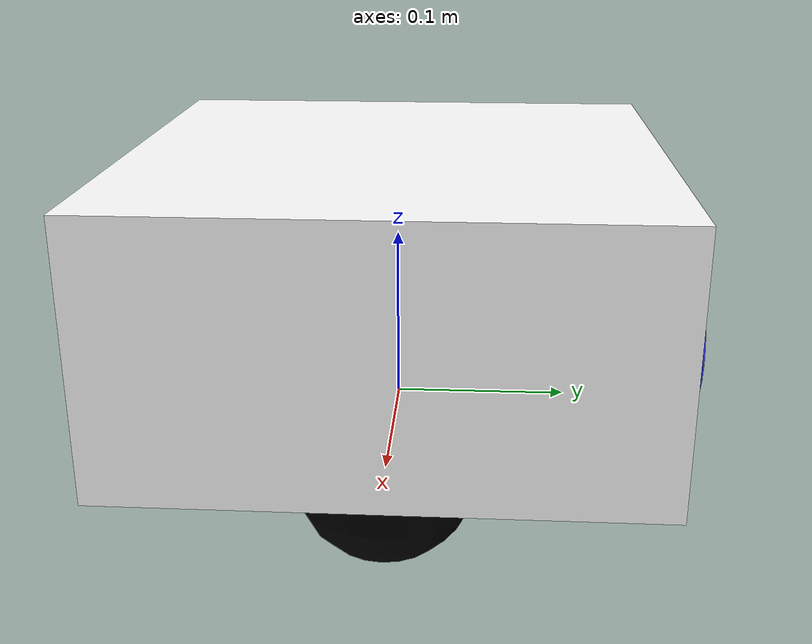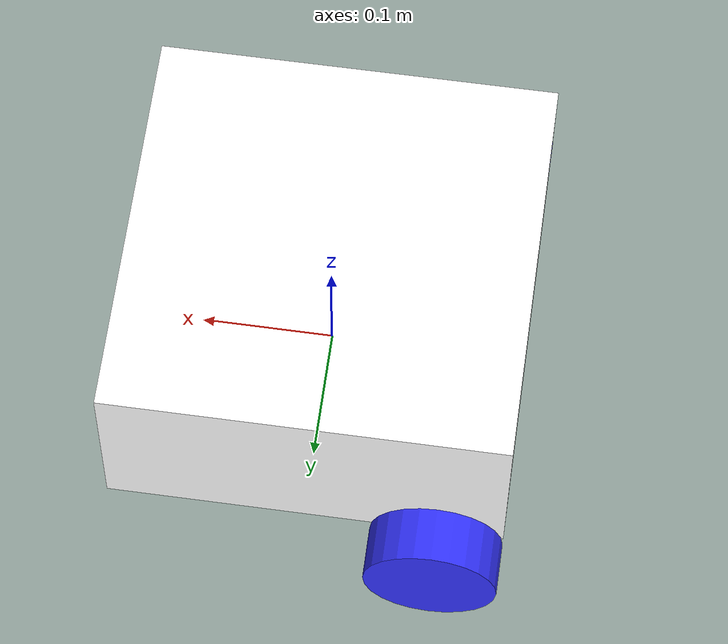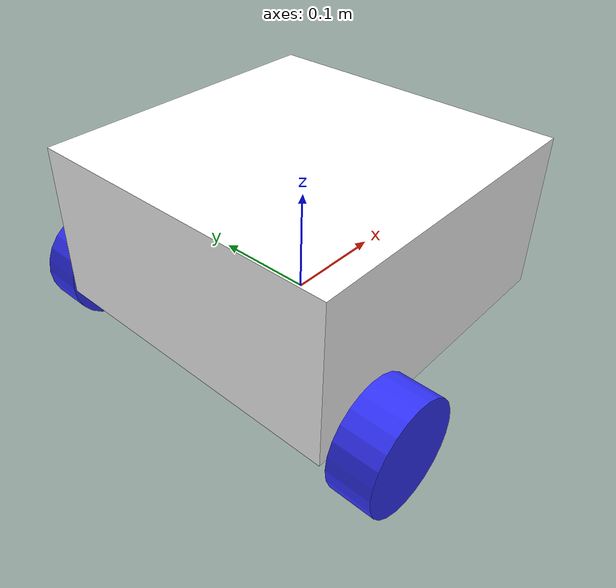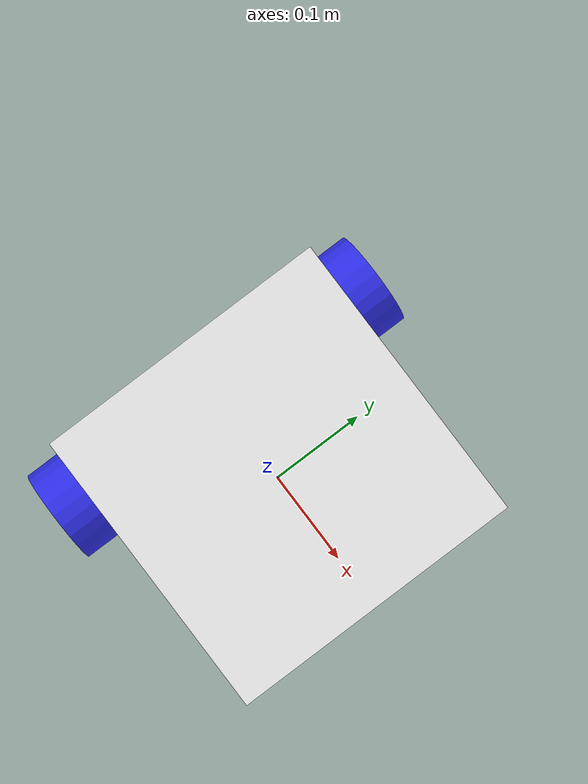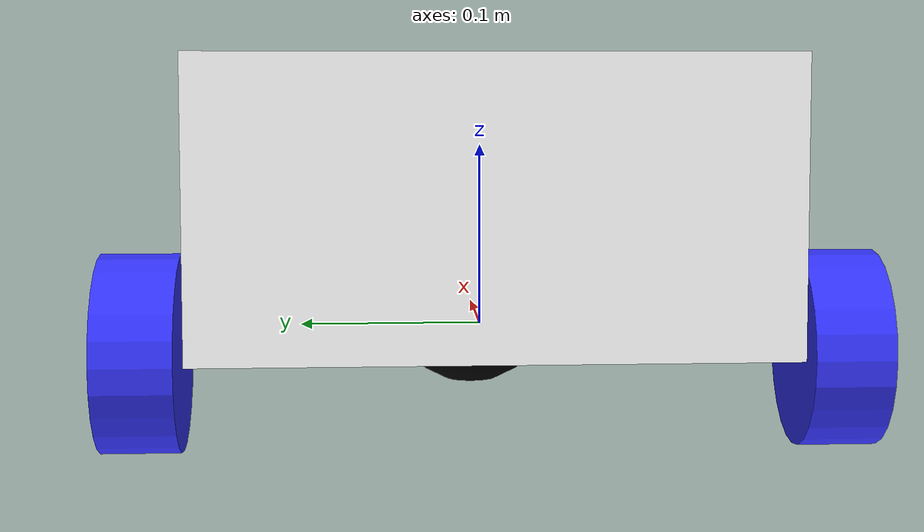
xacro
<?xml version="1.0"?>
<robot xmlns:xacro="http://www.ros.org/wiki/xacro">

      <xacro:include filename="$(find my_bot_one)/description/inertial_macro.xacro"/>

      <material name="white">
            <color rgba="1 1 1 1" />
      </material>

      <material name="orange">
            <color rgba="1 0.3 0.1 1"/>
      </material>

      <material name="blue">
            <color rgba="0.2 0.2 1 1"/>
      </material>

      <material name="black">
            <color rgba="0 0 0 1"/>
      </material>

      <material name="red">
            <color rgba="1 0 0 1"/>
      </material>

<!-- BASE LINK -->

      <link name="base_link">

      </link>

<!-- CHASSIS LINK -->

      <joint name="chassis_joint" type="fixed">
            <parent link="base_link"/>
            <child link="chassis"/>
            <origin xyz="0 0 0"/>
      </joint>

      <link name="chassis">
            <visual>
                  <origin xyz="0 0 0.075"/>
                  <geometry>
                        <box size="0.3 0.3 0.15"/>
                  </geometry>
                  <material name="white"/>
            </visual>
             <collision>
                  <origin xyz="0 0 0.075"/>
                  <geometry>
                        <box size="0.3 0.3 0.15"/>
                  </geometry>
            </collision>
            <xacro:inertial_box mass="0.5" x="0.3" y="0.3" z="0.15">
                  <origin xyz="0 0 0.075" rpy="0 0 0"/>
            </xacro:inertial_box>
      </link>

      <gazebo reference="chassis">
            <material>Gazebo/White</material>
      </gazebo>

      <!-- LEFT WHEEL LINK -->

      <joint name="left_wheel_joint" type="continuous">
            <parent link="chassis"/>
            <child link="left_wheel"/>
            <origin xyz="-0.1 0.175 0" rpy="-${pi/2} 0 0"/>
            <axis xyz="0 0 1"/>
      </joint>

      <link name="left_wheel">
            <visual>
                  <geometry>
                        <cylinder radius="0.05" length="0.04"/>
                  </geometry>
                  <material name="blue"/>
            </visual>
            <collision>
                  <geometry>
                        <cylinder radius="0.05" length="0.04"/>
                  </geometry>
            </collision>

            <xacro:inertial_cylinder mass="0.1" length="0.04" radius="0.05">
                  <origin xyz="0 0 0" rpy="0 0 0"/>
            </xacro:inertial_cylinder>
      </link>
      <gazebo reference="left_wheel">
            <material>Gazebo/Blue</material>
            <mu1 value="1"/>
            <mu2 value="1"/>
      </gazebo>

      <!-- RIGHT WHEEL LINK -->

      <joint name="right_wheel_joint" type="continuous">
            <parent link="chassis"/>
            <child link="right_wheel"/>
            <origin xyz="-0.1 -0.175 0" rpy="${pi/2} 0 0"/>
            <axis xyz="0 0 -1"/>
      </joint>

      <link name="right_wheel">
            <visual>
                  <geometry>
                        <cylinder radius="0.05" length="0.04"/>
                  </geometry>
                  <material name="blue"/>
            </visual>
            <collision>
                  <geometry>
                        <cylinder radius="0.05" length="0.04"/>
                  </geometry>
            </collision>
            <xacro:inertial_cylinder mass="0.1" length="0.04" radius="0.05">
                  <origin xyz="0 0 0" rpy="0 0 0"/>
            </xacro:inertial_cylinder>
      </link>

      <gazebo reference="right_wheel">
            <material>Gazebo/Blue</material>
            <mu1 value="1"/>
            <mu2 value="1"/>
      </gazebo>

      <!-- CASTER WHEEL LINK -->

      <joint name="caster_wheel_joint" type="fixed">
            <parent link="chassis"/>
            <child link="caster_wheel"/>
            <origin xyz="0.1 0 0"/>
      </joint>

      <link name="caster_wheel">
            <visual>
                  <geometry>
                        <sphere radius="0.05"/>
                  </geometry>
                  <material name="black"/>
            </visual>
            <collision>
                  <geometry>
                        <sphere radius="0.05"/>
                  </geometry>
            </collision>

            <xacro:inertial_sphere mass="0.01" radius="0.05">
                  <origin xyz="0 0 0" rpy="0 0 0"/>
            </xacro:inertial_sphere>
      </link>

      <gazebo reference="caster_wheel">
            <material>Gazebo/Black</material>
            <mu1 value="0.001"/>
            <mu2 value="0.001"/>
      </gazebo>

</robot>

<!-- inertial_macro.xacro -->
<robot xmlns:xacro="http://www.ros.org/wiki/xacro">

  <!-- Macro for calculating inertial properties of a box -->
  <xacro:macro name="inertial_box" params="mass x y z *origin">
    <inertial>
      <mass value="${mass}" />
      <inertia ixx="${mass * (y*y + z*z) / 12}" ixy="0" ixz="0"
               iyy="${mass * (x*x + z*z) / 12}" iyz="0"
               izz="${mass * (x*x + y*y) / 12}" />
      <xacro:insert_block name="origin" />
    </inertial>
  </xacro:macro>

  <!-- Macro for calculating inertial properties of a cylinder -->
  <xacro:macro name="inertial_cylinder" params="mass radius length *origin">
    <inertial>
      <mass value="${mass}" />
      <inertia ixx="${mass * (3 * radius * radius + length * length) / 12}" ixy="0" ixz="0"
               iyy="${mass * (3 * radius * radius + length * length) / 12}" iyz="0"
               izz="${mass * (radius * radius) / 2}" />
      <xacro:insert_block name="origin" />
    </inertial>
  </xacro:macro>

  <!-- Macro for calculating inertial properties of a sphere -->
  <xacro:macro name="inertial_sphere" params="mass radius *origin">
    <inertial>
      <mass value="${mass}" />
      <inertia ixx="${2 * mass * radius * radius / 5}" ixy="0" ixz="0"
               iyy="${2 * mass * radius * radius / 5}" iyz="0"
               izz="${2 * mass * radius * radius / 5}" />
      <xacro:insert_block name="origin" />
    </inertial>
  </xacro:macro>

</robot>
